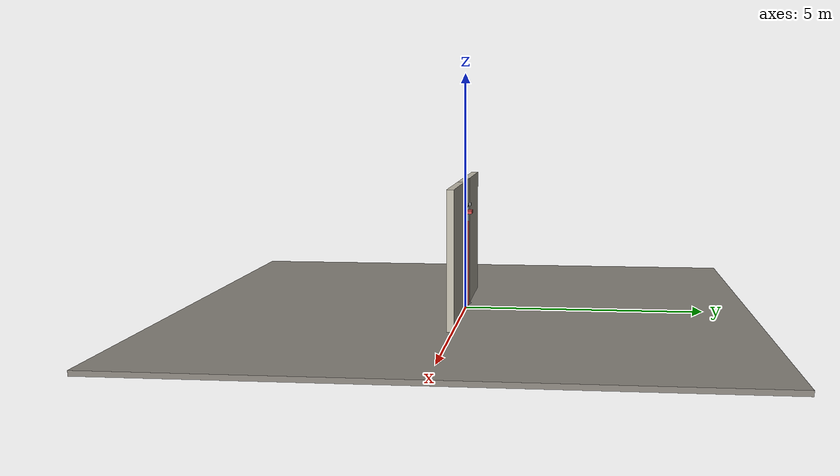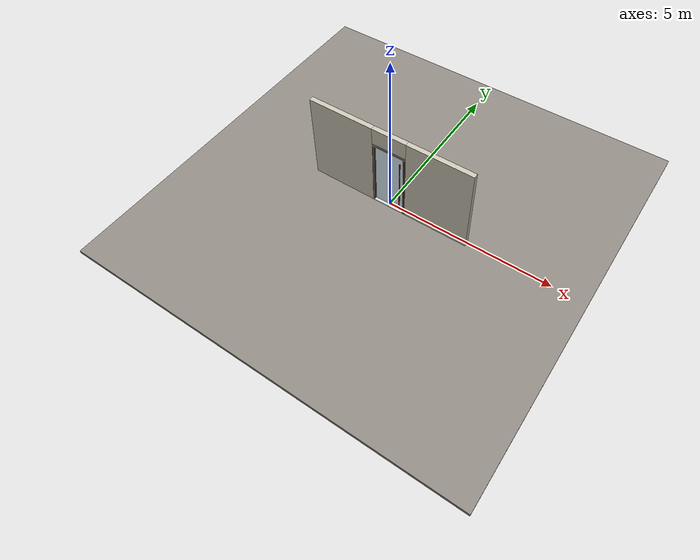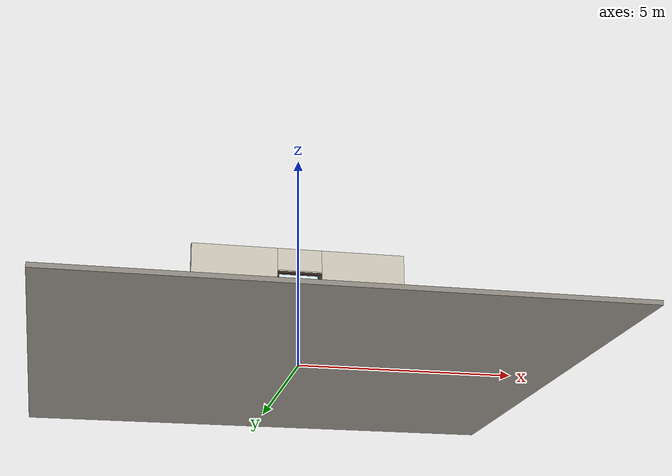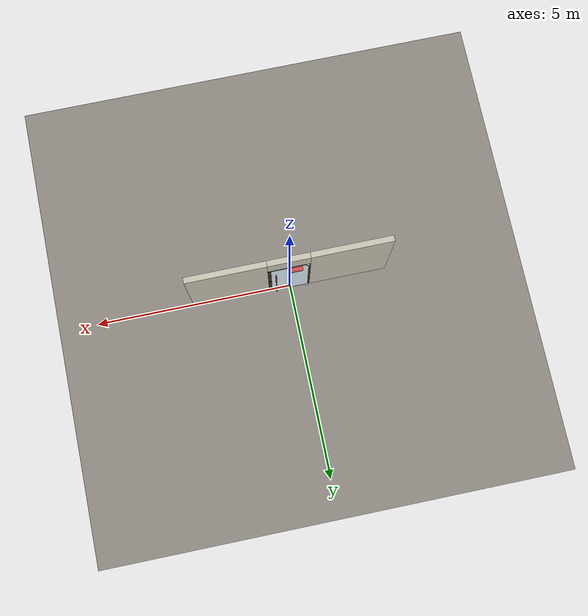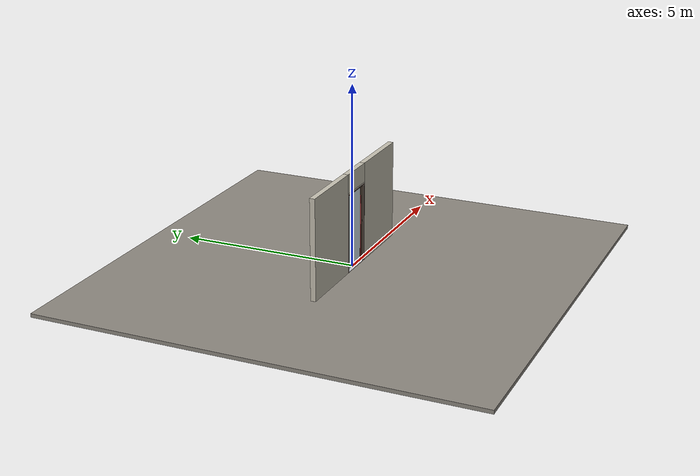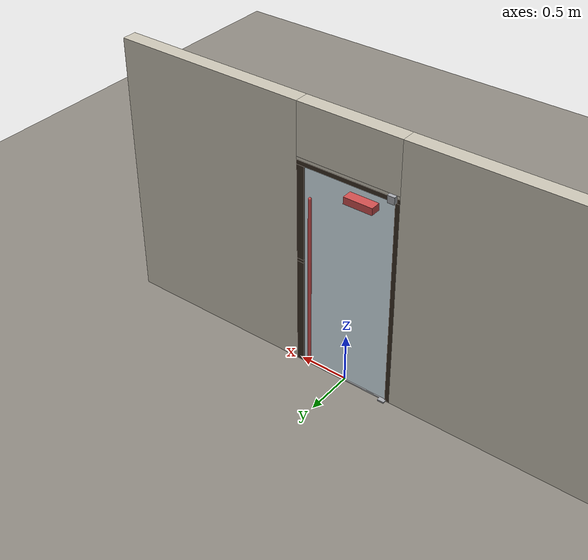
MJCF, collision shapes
<?xml version="1.0" ?>
<mujoco model="db0312_swing_single_simple">
  <compiler angle="radian" meshdir="../../hardware" texturedir="../../textures" autolimits="true" inertiafromgeom="false"/>
  <option timestep="0.002" integrator="implicitfast" cone="elliptic" impratio="10" noslip_iterations="3">
    <flag multiccd="enable"/>
  </option>
  <size memory="16M"/>
  <default>
    <geom condim="4" solref="0.005 1" solimp="0.95 0.99 0.001"/>
    <joint solreflimit="0.005 1" solimplimit="0.95 0.99 0.001"/>
    <tendon solreflimit="0.005 1"/>
    <equality solref="0.002 1"/>
  </default>
  <visual>
    <headlight ambient="0.4 0.4 0.4" diffuse="0.7 0.7 0.7" specular="0.2 0.2 0.2"/>
    <quality shadowsize="4096"/>
    <map znear="0.01" zfar="60"/>
  </visual>
  <asset>
    <mesh name="closer_body_fdc4667657" file="closer_body_fdc4667657.obj"/>
    <mesh name="pull_897e207f65" file="pull_897e207f65.obj"/>
    <material name="mat_floor" rgba="0.55 0.53 0.5 1" specular="0.2" shininess="0.15" reflectance="0"/>
    <material name="mat_wall" rgba="0.78 0.76 0.7 1" specular="0.2" shininess="0.1" reflectance="0"/>
    <material name="mat_leaf" rgba="0.85 0.92 0.95 0.25" specular="0.2" shininess="0.95" reflectance="0.1"/>
    <material name="mat_glass_leaf" rgba="0.85 0.92 0.95 0.25" specular="0.2" shininess="0.95" reflectance="0.1"/>
    <material name="mat_patch" rgba="0.75 0.76 0.77 1" specular="0.8" shininess="0.65" reflectance="0.4"/>
    <material name="mat_hinge" rgba="0.65 0.66 0.68 1" specular="0.74" shininess="0.5" reflectance="0.36"/>
    <material name="mat_op_stainless" rgba="0.75 0.76 0.77 1" specular="0.8" shininess="0.65" reflectance="0.4"/>
    <material name="mat_deadbolt" rgba="0.85 0.66 0.3 1" specular="0.8" shininess="0.75" reflectance="0.4"/>
    <material name="mat_frame" rgba="0.22 0.17 0.13 1" specular="0.8" shininess="0.6" reflectance="0.4"/>
    <material name="mat_threshold" rgba="0.8 0.81 0.83 1" specular="0.8" shininess="0.6" reflectance="0.4"/>
    <material name="mat_closer" rgba="0.22 0.17 0.13 1" specular="0.8" shininess="0.6" reflectance="0.4"/>
    <material name="mat_sign" rgba="0.75 0.76 0.77 1" specular="0.8" shininess="0.65" reflectance="0.4"/>
    <texture name="skybox" type="skybox" builtin="gradient" rgb1="0.6 0.7 0.85" rgb2="0.9 0.92 0.95" width="256" height="256"/>
  </asset>
  <worldbody>
    <light name="sun" pos="1.5 -2.5 4" dir="-0.3 0.5 -0.8" directional="true" diffuse="0.8 0.8 0.8" specular="0.3 0.3 0.3" castshadow="true"/>
    <light name="fill" pos="-1.5 2.5 3" dir="0.3 -0.5 -0.7" directional="true" diffuse="0.35 0.35 0.4" castshadow="false"/>
    <camera name="robot_view" pos="0 -2.680813 1.812087" xyaxes="1 0 0 0 0.26963 0.962964" fovy="52"/>
    <camera name="far_view" pos="0 2.594812 1.812087" xyaxes="-1 0 0 0 -0.26963 0.962964" fovy="52"/>
    <camera name="iso" pos="2.004737 -2.258763 2.234138" xyaxes="0.741536 0.670913 0 -0.242917 0.268487 0.932151" fovy="46"/>
    <camera name="detail_handle" pos="0.53 -0.8875 1.296" xyaxes="0.97561 0.219512 0 -0.070934 0.315262 0.94635" fovy="38"/>
    <geom name="floor" type="box" size="6 6 0.05" pos="0 0 -0.05" material="mat_floor" group="0" contype="1" conaffinity="1" friction="0.8 0.005 0.0001" density="2400"/>
    <geom name="wall_left" type="box" size="0.9965 0.0725 1.3735" pos="-1.5035 -0.043 1.3735" material="mat_wall" group="0" contype="1" conaffinity="1" friction="0.6 0.005 0.0001" density="800"/>
    <geom name="wall_right" type="box" size="0.9815 0.0725 1.3735" pos="1.5185 -0.043 1.3735" material="mat_wall" group="0" contype="1" conaffinity="1" friction="0.6 0.005 0.0001" density="800"/>
    <geom name="wall_header" type="box" size="0.522 0.0725 0.2625" pos="0.015 -0.043 2.4845" material="mat_wall" group="0" contype="1" conaffinity="1" friction="0.6 0.005 0.0001" density="800"/>
    <geom name="pivot_bottom_socket" type="box" size="0.035 0.035 0.0125" pos="-0.443 0.0325 0.0025" material="mat_hinge" group="1" contype="0" conaffinity="0" density="7850"/>
    <geom name="pivot_top_bracket" type="box" size="0.035 0.035 0.0355" pos="-0.443 0.0325 2.1865" material="mat_hinge" group="1" contype="0" conaffinity="0" density="7850"/>
    <geom name="leaf_deadbolt_strike_b" type="box" size="0.0155 0.003 0.0005" pos="0.4615 0 1.1375" quat="-0.5 -0.5 0.5 0.5" material="mat_deadbolt" group="1" contype="0" conaffinity="0" density="7800"/>
    <geom name="leaf_deadbolt_strike_l" type="box" size="0.003 0.0155 0.0005" pos="0.4615 0.0125 1.156" quat="-0.5 -0.5 0.5 0.5" material="mat_deadbolt" group="1" contype="0" conaffinity="0" density="7800"/>
    <geom name="leaf_deadbolt_strike_t" type="box" size="0.0155 0.003 0.0005" pos="0.4615 0 1.1745" quat="-0.5 -0.5 0.5 0.5" material="mat_deadbolt" group="1" contype="0" conaffinity="0" density="7800"/>
    <geom name="leaf_deadbolt_strike_r" type="box" size="0.003 0.0155 0.0005" pos="0.4615 -0.0125 1.156" quat="-0.5 -0.5 0.5 0.5" material="mat_deadbolt" group="1" contype="0" conaffinity="0" density="7800"/>
    <geom name="jamb_hinge" type="box" size="0.0225 0.0725 1.0735" pos="-0.4845 -0.043 1.0735" material="mat_frame" group="0" contype="1" conaffinity="1" friction="0.6 0.005 0.0001" density="300"/>
    <geom name="strike_1156_wall_n" type="box" size="0.0375 0.053 0.0155" pos="0.4995 -0.0625 1.156" material="mat_frame" group="0" contype="1" conaffinity="1" friction="0.6 0.005 0.0001" density="300"/>
    <geom name="strike_1156_wall_p" type="box" size="0.0375 0.01 0.0155" pos="0.4995 0.0195 1.156" material="mat_frame" group="0" contype="1" conaffinity="1" friction="0.6 0.005 0.0001" density="300"/>
    <geom name="strike_1156_back" type="box" size="0.0228 0.0095 0.0155" pos="0.5142 0 1.156" material="mat_frame" group="0" contype="1" conaffinity="1" friction="0.6 0.005 0.0001" density="300"/>
    <geom name="jamb_strike_0" type="box" size="0.0375 0.0725 0.57025" pos="0.4995 -0.043 0.57025" material="mat_frame" group="0" contype="1" conaffinity="1" friction="0.6 0.005 0.0001" density="300"/>
    <geom name="jamb_strike_1" type="box" size="0.0375 0.0725 0.48775" pos="0.4995 -0.043 1.65925" material="mat_frame" group="0" contype="1" conaffinity="1" friction="0.6 0.005 0.0001" density="300"/>
    <geom name="jamb_head" type="box" size="0.522 0.0725 0.0225" pos="0.015 -0.043 2.1695" material="mat_frame" group="0" contype="1" conaffinity="1" friction="0.6 0.005 0.0001" density="300"/>
    <geom name="head_stud" type="box" size="0.522 0.0725 0.015" pos="0.015 -0.043 2.207" material="mat_wall" group="0" contype="1" conaffinity="1" friction="0.6 0.005 0.0001" density="500"/>
    <geom name="threshold" type="box" size="0.507 0.0725 0.0065" pos="0 -0.043 0.0065" material="mat_threshold" group="0" contype="1" conaffinity="1" friction="0.5 0.005 0.0001" density="2700"/>
    <site name="approach_point" pos="0 -1.5 0" quat="1 0 0 0" size="0.05" rgba="0.2 0.9 0.2 0.5" group="4"/>
    <site name="goal_point" pos="0 1.5 0" quat="1 0 0 0" size="0.05" rgba="0.2 0.9 0.2 0.5" group="4"/>
    <site name="door_plane_center" pos="0 0 1.0735" quat="1 0 0 0" size="0.02" rgba="0.2 0.9 0.2 0.5" group="4"/>
    <body name="leaf" pos="-0.462 0 0">
      <inertial pos="0.500958 0.009688 1.197771" mass="105.692391" quat="0.520655 0.520642 0.468804 -0.487927" diaginertia="7.6203583 44.725909666 51.936742263"/>
      <joint name="leaf_hinge" type="hinge" axis="0 0 1" pos="0.019 0.0325 0" limited="true" range="0 1.570796" damping="12.268966" frictionloss="1.006049" stiffness="32.289355" springref="-1.956682" armature="0.02"/>
      <geom name="leaf_glass" type="box" size="0.457 0.0225 1.063" pos="0.46 0 1.08" material="mat_glass_leaf" group="0" contype="1" conaffinity="1" friction="0.4 0.005 0.0001" density="1"/>
      <geom name="leaf_pull_n" type="mesh" mesh="pull_897e207f65" pos="0.812 -0.0225 1.016" quat="0.707107 0.707107 0 0" material="mat_op_stainless" group="1" contype="0" conaffinity="0" density="3000"/>
      <geom name="leaf_pull_col_n" type="capsule" size="0.016 0.88" pos="0.812 -0.0875 1.016" material="mat_op_stainless" group="3" contype="1" conaffinity="1" rgba="0.8 0.3 0.3 0.25" friction="0.7 0.01 0.0001" density="3000"/>
      <geom name="leaf_pull_p" type="mesh" mesh="pull_897e207f65" pos="0.812 0.0225 1.016" quat="-0.707107 0.707107 0 0" material="mat_op_stainless" group="1" contype="0" conaffinity="0" density="3000"/>
      <geom name="leaf_pull_col_p" type="capsule" size="0.016 0.88" pos="0.812 0.0875 1.016" material="mat_op_stainless" group="3" contype="1" conaffinity="1" rgba="0.8 0.3 0.3 0.25" friction="0.7 0.01 0.0001" density="3000"/>
      <geom name="leaf_deadbolt_faceplate" type="box" size="0.0006 0.014 0.0245" pos="0.9164 0 1.156" material="mat_deadbolt" group="1" contype="0" conaffinity="0" density="8500"/>
      <geom name="closer_body" type="mesh" mesh="closer_body_fdc4667657" pos="0.3 0.0225 2.046" quat="-0.707107 0.707107 0 0" material="mat_closer" group="1" contype="0" conaffinity="0" density="2000"/>
      <geom name="closer_body_col" type="box" size="0.145 0.05 0.035" pos="0.3 0.0725 2.046" material="mat_closer" group="3" contype="1" conaffinity="1" rgba="0.8 0.3 0.3 0.25" friction="0.6 0.005 0.0001" density="2000"/>
      <site name="leaf_pull_grip_n" pos="0.812 -0.0875 1.016" quat="1 0 0 0" size="0.012" rgba="0.2 0.9 0.2 0.5" group="4"/>
      <site name="leaf_pull_grip_p" pos="0.812 0.0875 1.016" quat="1 0 0 0" size="0.012" rgba="0.2 0.9 0.2 0.5" group="4"/>
      <site name="leaf_edge_mid" pos="0.917 0 1.063" quat="1 0 0 0" size="0.02" rgba="0.2 0.9 0.2 0.5" group="4"/>
      <body name="leaf_deadbolt" pos="0.917 0 1.156">
        <inertial pos="-0.0023 0 0" mass="0.18836" quat="0 0 0.707107 0.707107" diaginertia="0.000013829 0.000052194 0.000057986"/>
        <geom name="leaf_deadbolt_box" type="box" size="0.0277 0.008 0.0125" pos="-0.0023 0 0" material="mat_deadbolt" group="0" contype="1" conaffinity="1" friction="0.3 0.005 0.0001" density="8500"/>
      </body>
    </body>
  </worldbody>
  <sensor>
    <jointpos name="leaf_hinge_pos" joint="leaf_hinge"/>
    <jointvel name="leaf_hinge_vel" joint="leaf_hinge"/>
  </sensor>
</mujoco>
